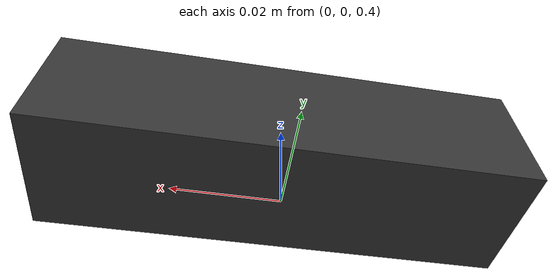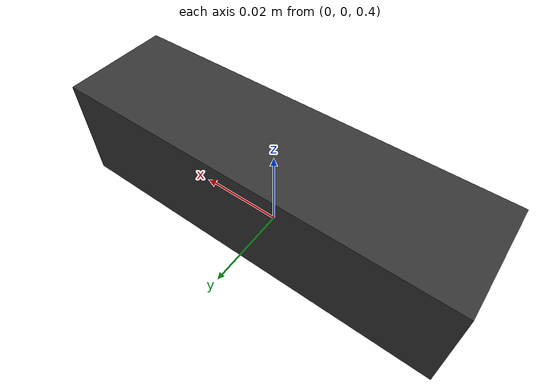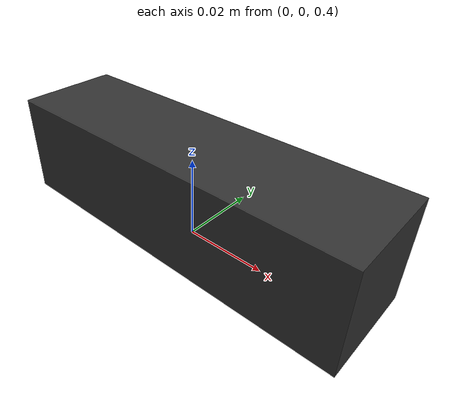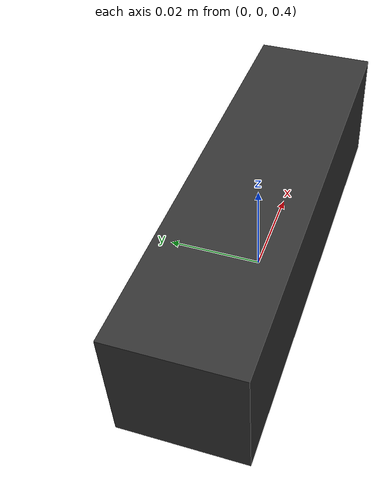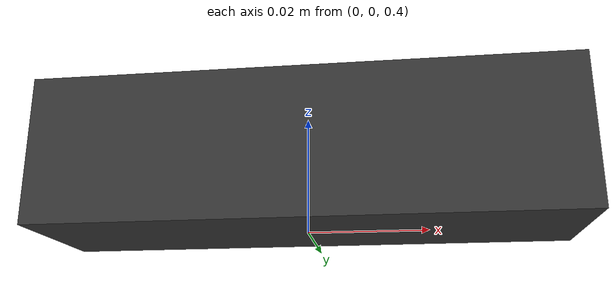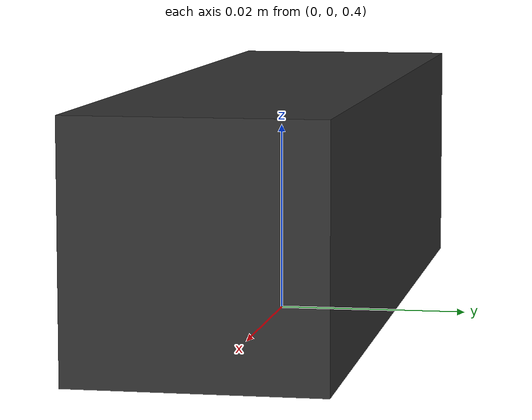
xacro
<?xml version="1.0"?>
<robot name="camera_stand" xmlns:xacro="http://www.ros.org/wiki/xacro">

  <!-- How high the stand holds the camera, in metres. -->
  <xacro:arg name="mount_height" default="0.40"/>

  <!-- The camera: how many pixels across and down, and how wide it sees. The
       defaults are the camera the doc uses. xacro already knows pi and radians(). -->
  <xacro:arg name="width" default="320"/>
  <xacro:arg name="height" default="240"/>
  <xacro:arg name="hfov_deg" default="60"/>

  <link name="world"/>

  <!-- The camera body. Like every other link on a robot, its X points forward
       (out of the lens), Y to the left and Z up. -->
  <link name="camera_link">
    <visual>
      <!-- The body sits behind the lens, so the camera never sees itself. -->
      <origin xyz="-0.0125 0 0"/>
      <geometry>
        <box size="0.025 0.09 0.025"/>
      </geometry>
      <material name="camera_grey">
        <color rgba="0.2 0.2 0.2 1"/>
      </material>
    </visual>
    <!-- Gazebo drops links that have no mass, so give it a small one. -->
    <inertial>
      <mass value="0.1"/>
      <inertia ixx="1e-4" ixy="0" ixz="0" iyy="1e-4" iyz="0" izz="1e-4"/>
    </inertial>
  </link>

  <joint name="camera_mount" type="fixed">
    <parent link="world"/>
    <child link="camera_link"/>
    <!-- Pitch a quarter turn so the lens looks down at the table, then yaw a
         quarter turn so that world +Y comes out at the top of the picture. -->
    <origin xyz="0 0 $(arg mount_height)" rpy="0 ${pi / 2} ${pi / 2}"/>
  </joint>

  <link name="camera_optical_frame"/>

  <joint name="camera_optical_joint" type="fixed">
    <parent link="camera_link"/>
    <child link="camera_optical_frame"/>
    <origin xyz="0 0 0" rpy="${-pi / 2} 0 ${-pi / 2}"/>
  </joint>

  <gazebo reference="camera_link">
    <!-- The camera the doc uses: 320 x 240 pixels, 60 degrees across, unless
         the launch file asks for another. -->
    <sensor name="camera" type="rgbd_camera">
      <topic>camera</topic>
      <gz_frame_id>camera_optical_frame</gz_frame_id>
      <update_rate>5</update_rate>
      <always_on>true</always_on>
      <camera>
        <horizontal_fov>${radians($(arg hfov_deg))}</horizontal_fov>
        <image>
          <width>$(arg width)</width>
          <height>$(arg height)</height>
        </image>
        <clip>
          <near>0.05</near>
          <far>3.0</far>
        </clip>
      </camera>
    </sensor>

    <!-- A basic camera in the same place, with the same lens, but only 80 x 60
         pixels: few enough to print every one of them in a terminal. -->
    <sensor name="basic_camera" type="rgbd_camera">
      <topic>basic_camera</topic>
      <gz_frame_id>camera_optical_frame</gz_frame_id>
      <update_rate>5</update_rate>
      <always_on>true</always_on>
      <camera>
        <horizontal_fov>${pi / 3}</horizontal_fov>
        <image>
          <width>80</width>
          <height>60</height>
        </image>
        <clip>
          <near>0.05</near>
          <far>3.0</far>
        </clip>
      </camera>
    </sensor>
  </gazebo>

</robot>
